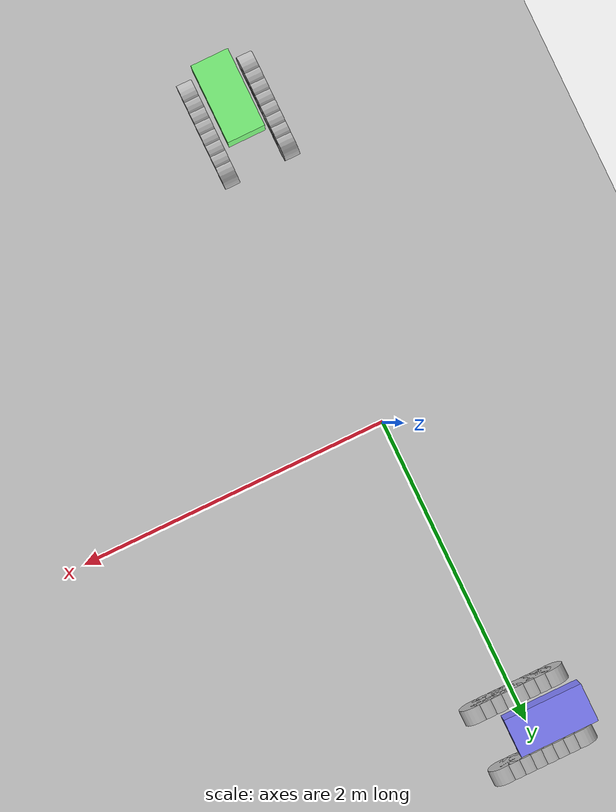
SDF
<?xml version="1.0" ?>
<sdf version="1.6">
  <world name="track_drive">

    <physics name="1ms" type="ignored">
      <max_step_size>0.001</max_step_size>
      <real_time_factor>1.0</real_time_factor>
    </physics>
    <plugin
      filename="gz-sim-physics-system"
      name="gz::sim::systems::Physics">
    </plugin>
    <plugin
      filename="gz-sim-user-commands-system"
      name="gz::sim::systems::UserCommands">
    </plugin>
    <plugin
      filename="gz-sim-scene-broadcaster-system"
      name="gz::sim::systems::SceneBroadcaster">
    </plugin>
    <plugin
      filename="gz-sim-imu-system"
      name="gz::sim::systems::Imu">
    </plugin>

    <light type="directional" name="sun">
      <cast_shadows>true</cast_shadows>
      <pose>0 0 10 0 0 0</pose>
      <diffuse>1 1 1 1</diffuse>
      <specular>0.5 0.5 0.5 1</specular>
      <attenuation>
        <range>1000</range>
        <constant>0.9</constant>
        <linear>0.01</linear>
        <quadratic>0.001</quadratic>
      </attenuation>
      <direction>-0.5 0.1 -0.9</direction>
    </light>

    <model name="ground_plane">
      <static>true</static>
      <link name="link">
        <collision name="collision">
          <geometry>
            <plane>
              <normal>0 0 1</normal>
              <size>100 100</size>
            </plane>
          </geometry>
        </collision>
        <visual name="visual">
          <geometry>
            <plane>
              <normal>0 0 1</normal>
              <size>100 100</size>
            </plane>
          </geometry>
          <material>
            <ambient>0.8 0.8 0.8 1</ambient>
            <diffuse>0.8 0.8 0.8 1</diffuse>
            <specular>0.8 0.8 0.8 1</specular>
          </material>
        </visual>
      </link>
    </model>

    <model name="vehicle_blue">
      <pose frame=''>0 2 0.071917 0 0 0</pose>
      <link name='base_link'>
          <pose frame=''>0 0 0 0 -0 0</pose>
          <inertial>
              <pose frame=''>-0.122 0 0.118 1.5707963267948966 -0 0</pose>
              <mass>13.14</mass>
              <inertia>
                  <ixx>0.10019</ixx>
                  <ixy>0</ixy>
                  <ixz>0</ixz>
                  <iyy>0.345043</iyy>
                  <iyz>0</iyz>
                  <izz>0.302044</izz>
              </inertia>
          </inertial>
          <collision name='base_link_collision'>
              <pose frame=''>-0.122 0 0.118 0 -0 0</pose>
              <geometry>
                  <box>
                      <size>0.50017 0.24093 0.139</size>
                  </box>
              </geometry>
          </collision>
          <visual name='base_link_visual'>
              <pose frame=''>-0.122 0 0.118 0 -0 0</pose>
              <geometry>
                  <box>
                      <size>0.50017 0.24093 0.139</size>
                  </box>
              </geometry>
              <material>
                <ambient>0.5 0.5 1.0 1</ambient>
                <diffuse>0.5 0.5 1.0 1</diffuse>
                <specular>0.0 0.0 1.0 1</specular>
              </material>
          </visual>
          <self_collide>0</self_collide>
          <gravity>1</gravity>
          <kinematic>0</kinematic>

          <sensor name="imu_sensor" type="imu">
            <always_on>1</always_on>
            <update_rate>1000</update_rate>
          </sensor>
      </link>

      <link name='left_track'>
          <pose frame=''>0 0.1985 0 0 -0 0</pose>
          <inertial>
              <mass>2.06</mass>
              <inertia>
                  <ixx>0.002731</ixx>
                  <ixy>0</ixy>
                  <ixz>0</ixz>
                  <iyy>0.032554</iyy>
                  <iyz>0</iyz>
                  <izz>0.031391</izz>
              </inertia>
          </inertial>
          <collision name='left_track_collision'>
              <pose frame=''>0 0 0.01855 1.5707963267948966  -0 1.5707963267948966</pose>
              <geometry>
                  <box>
                      <size>0.009728 0.018094 0.05</size>
                  </box>
              </geometry>
          </collision>
      </link>
      <joint name='left_track_j' type='fixed'>
          <child>left_track</child>
          <parent>base_link</parent>
      </joint>
      <link name='left_track_wheel1'>
          <pose frame=''>0.25 0.1985 0.01855 0 -0 0</pose>
          <inertial>
              <mass>0.5</mass>
              <inertia>
                  <ixx>0.001</ixx>
                  <ixy>0</ixy>
                  <ixz>0</ixz>
                  <iyy>0.001</iyy>
                  <iyz>0</iyz>
                  <izz>0.001</izz>
              </inertia>
          </inertial>
          <collision name='left_track_wheel1_collision'>
              <pose frame=''>0 0 0 1.5707963267948966 -0 0</pose>
              <geometry>
                  <cylinder>
                      <length>0.09728</length>
                      <radius>0.09047</radius>
                  </cylinder>
              </geometry>
              <surface>
                  <friction>
                      <ode>
                          <mu>0.5</mu>
                          <mu2>3.19858</mu2>
                          <fdir1>0 0 1</fdir1>
                          <slip1>0</slip1>
                          <slip2>0</slip2>
                      </ode>
                  </friction>
              </surface>
          </collision>
          <visual name='left_track_wheel1_visual'>
              <pose frame=''>0 0 0 1.5707963267948966 -0 0</pose>
              <geometry>
                  <cylinder>
                      <length>0.09728</length>
                      <radius>0.09047</radius>
                  </cylinder>
              </geometry>
          </visual>
      </link>
      <joint name='left_track_wheel1_j' type='revolute'>
          <child>left_track_wheel1</child>
          <parent>left_track</parent>
          <axis>
              <xyz>0 1 0</xyz>
              <limit>
                  <lower>-1e+16</lower>
                  <upper>1e+16</upper>
              </limit>
          </axis>
      </joint>
      <link name='left_track_wheel2'>
          <pose frame=''>0.1786 0.1985 0.01855 0 -0 0</pose>
          <inertial>
              <mass>0.5</mass>
              <inertia>
                  <ixx>0.001</ixx>
                  <ixy>0</ixy>
                  <ixz>0</ixz>
                  <iyy>0.001</iyy>
                  <iyz>0</iyz>
                  <izz>0.001</izz>
              </inertia>
          </inertial>
          <collision name='left_track_wheel2_collision'>
              <pose frame=''>0 0 0 1.5707963267948966 -0 0</pose>
              <geometry>
                  <cylinder>
                      <length>0.09728</length>
                      <radius>0.09047</radius>
                  </cylinder>
              </geometry>
              <surface>
                  <friction>
                      <ode>
                          <mu>0.5</mu>
                          <mu2>3.19858</mu2>
                          <fdir1>0 0 1</fdir1>
                          <slip1>0</slip1>
                          <slip2>0</slip2>
                      </ode>
                  </friction>
              </surface>
          </collision>
          <visual name='left_track_wheel2_visual'>
              <pose frame=''>0 0 0 1.5707963267948966 -0 0</pose>
              <geometry>
                  <cylinder>
                      <length>0.09728</length>
                      <radius>0.09047</radius>
                  </cylinder>
              </geometry>
          </visual>
      </link>
      <joint name='left_track_wheel2_j' type='revolute'>
          <child>left_track_wheel2</child>
          <parent>left_track</parent>
          <axis>
              <xyz>0 1 0</xyz>
              <limit>
                  <lower>-1e+16</lower>
                  <upper>1e+16</upper>
              </limit>
          </axis>
      </joint>
      <link name='left_track_wheel3'>
          <pose frame=''>0.1072 0.1985 0.01855 0 -0 0</pose>
          <inertial>
              <mass>0.5</mass>
              <inertia>
                  <ixx>0.001</ixx>
                  <ixy>0</ixy>
                  <ixz>0</ixz>
                  <iyy>0.001</iyy>
                  <iyz>0</iyz>
                  <izz>0.001</izz>
              </inertia>
          </inertial>
          <collision name='left_track_wheel3_collision'>
              <pose frame=''>0 0 0 1.5707963267948966 -0 0</pose>
              <geometry>
                  <cylinder>
                      <length>0.09728</length>
                      <radius>0.09047</radius>
                  </cylinder>
              </geometry>
              <surface>
                  <friction>
                      <ode>
                          <mu>0.5</mu>
                          <mu2>3.19858</mu2>
                          <fdir1>0 0 1</fdir1>
                          <slip1>0</slip1>
                          <slip2>0</slip2>
                      </ode>
                  </friction>
              </surface>
          </collision>
          <visual name='left_track_wheel3_visual'>
              <pose frame=''>0 0 0 1.5707963267948966 -0 0</pose>
              <geometry>
                  <cylinder>
                      <length>0.09728</length>
                      <radius>0.09047</radius>
                  </cylinder>
              </geometry>
          </visual>
      </link>
      <joint name='left_track_wheel3_j' type='revolute'>
          <child>left_track_wheel3</child>
          <parent>left_track</parent>
          <axis>
              <xyz>0 1 0</xyz>
              <limit>
                  <lower>-1e+16</lower>
                  <upper>1e+16</upper>
              </limit>
          </axis>
      </joint>
      <link name='left_track_wheel4'>
          <pose frame=''>-0.25 0.1985 0.01855 0 -0 0</pose>
          <inertial>
              <mass>0.5</mass>
              <inertia>
                  <ixx>0.001</ixx>
                  <ixy>0</ixy>
                  <ixz>0</ixz>
                  <iyy>0.001</iyy>
                  <iyz>0</iyz>
                  <izz>0.001</izz>
              </inertia>
          </inertial>
          <collision name='left_track_wheel4_collision'>
              <pose frame=''>0 0 0 1.5707963267948966 -0 0</pose>
              <geometry>
                  <cylinder>
                      <length>0.09728</length>
                      <radius>0.09047</radius>
                  </cylinder>
              </geometry>
              <surface>
                  <friction>
                      <ode>
                          <mu>0.5</mu>
                          <mu2>3.19858</mu2>
                          <fdir1>0 0 1</fdir1>
                          <slip1>0</slip1>
                          <slip2>0</slip2>
                      </ode>
                  </friction>
              </surface>
          </collision>
          <visual name='left_track_wheel4_visual'>
              <pose frame=''>0 0 0 1.5707963267948966 -0 0</pose>
              <geometry>
                  <cylinder>
                      <length>0.09728</length>
                      <radius>0.09047</radius>
                  </cylinder>
              </geometry>
          </visual>
      </link>
      <joint name='left_track_wheel4_j' type='revolute'>
          <child>left_track_wheel4</child>
          <parent>left_track</parent>
          <axis>
              <xyz>0 1 0</xyz>
              <limit>
                  <lower>-1e+16</lower>
                  <upper>1e+16</upper>
              </limit>
          </axis>
      </joint>
      <link name='left_track_wheel5'>
          <pose frame=''>-0.0358 0.1985 0.01855 0 -0 0</pose>
          <inertial>
              <mass>0.5</mass>
              <inertia>
                  <ixx>0.001</ixx>
                  <ixy>0</ixy>
                  <ixz>0</ixz>
                  <iyy>0.001</iyy>
                  <iyz>0</iyz>
                  <izz>0.001</izz>
              </inertia>
          </inertial>
          <collision name='left_track_wheel5_collision'>
              <pose frame=''>0 0 0 1.5707963267948966 -0 0</pose>
              <geometry>
                  <cylinder>
                      <length>0.09728</length>
                      <radius>0.09047</radius>
                  </cylinder>
              </geometry>
              <surface>
                  <friction>
                      <ode>
                          <mu>0.5</mu>
                          <mu2>3.19858</mu2>
                          <fdir1>0 0 1</fdir1>
                          <slip1>0</slip1>
                          <slip2>0</slip2>
                      </ode>
                  </friction>
              </surface>
          </collision>
          <visual name='left_track_wheel5_visual'>
              <pose frame=''>0 0 0 1.5707963267948966 -0 0</pose>
              <geometry>
                  <cylinder>
                      <length>0.09728</length>
                      <radius>0.09047</radius>
                  </cylinder>
              </geometry>
          </visual>
      </link>
      <joint name='left_track_wheel5_j' type='revolute'>
          <child>left_track_wheel5</child>
          <parent>left_track</parent>
          <axis>
              <xyz>0 1 0</xyz>
              <limit>
                  <lower>-1e+16</lower>
                  <upper>1e+16</upper>
              </limit>
          </axis>
      </joint>
      <link name='left_track_wheel6'>
          <pose frame=''>-0.1072 0.1985 0.01855 0 -0 0</pose>
          <inertial>
              <mass>0.5</mass>
              <inertia>
                  <ixx>0.001</ixx>
                  <ixy>0</ixy>
                  <ixz>0</ixz>
                  <iyy>0.001</iyy>
                  <iyz>0</iyz>
                  <izz>0.001</izz>
              </inertia>
          </inertial>
          <collision name='left_track_wheel6_collision'>
              <pose frame=''>0 0 0 1.5707963267948966 -0 0</pose>
              <geometry>
                  <cylinder>
                      <length>0.09728</length>
                      <radius>0.09047</radius>
                  </cylinder>
              </geometry>
              <surface>
                  <friction>
                      <ode>
                          <mu>0.5</mu>
                          <mu2>3.19858</mu2>
                          <fdir1>0 0 1</fdir1>
                          <slip1>0</slip1>
                          <slip2>0</slip2>
                      </ode>
                  </friction>
              </surface>
          </collision>
          <visual name='left_track_wheel6_visual'>
              <pose frame=''>0 0 0 1.5707963267948966 -0 0</pose>
              <geometry>
                  <cylinder>
                      <length>0.09728</length>
                      <radius>0.09047</radius>
                  </cylinder>
              </geometry>
          </visual>
          <gravity>1</gravity>
          <velocity_decay/>
          <kinematic>0</kinematic>
      </link>
      <joint name='left_track_wheel6_j' type='revolute'>
          <child>left_track_wheel6</child>
          <parent>left_track</parent>
          <axis>
              <xyz>0 1 0</xyz>
              <limit>
                  <lower>-1e+16</lower>
                  <upper>1e+16</upper>
              </limit>
          </axis>
      </joint>
      <link name='left_track_wheel7'>
          <pose frame=''>-0.1786 0.1985 0.01855 0 -0 0</pose>
          <inertial>
              <mass>0.5</mass>
              <inertia>
                  <ixx>0.001</ixx>
                  <ixy>0</ixy>
                  <ixz>0</ixz>
                  <iyy>0.001</iyy>
                  <iyz>0</iyz>
                  <izz>0.001</izz>
              </inertia>
          </inertial>
          <collision name='left_track_wheel7_collision'>
              <pose frame=''>0 0 0 1.5707963267948966 -0 0</pose>
              <geometry>
                  <cylinder>
                      <length>0.09728</length>
                      <radius>0.09047</radius>
                  </cylinder>
              </geometry>
              <surface>
                  <friction>
                      <ode>
                          <mu>0.5</mu>
                          <mu2>3.19858</mu2>
                          <fdir1>0 0 1</fdir1>
                          <slip1>0</slip1>
                          <slip2>0</slip2>
                      </ode>
                  </friction>
              </surface>
          </collision>
          <visual name='left_track_wheel7_visual'>
              <pose frame=''>0 0 0 1.5707963267948966 -0 0</pose>
              <geometry>
                  <cylinder>
                      <length>0.09728</length>
                      <radius>0.09047</radius>
                  </cylinder>
              </geometry>
          </visual>
      </link>
      <joint name='left_track_wheel7_j' type='revolute'>
          <child>left_track_wheel7</child>
          <parent>left_track</parent>
          <axis>
              <xyz>0 1 0</xyz>
              <limit>
                  <lower>-1e+16</lower>
                  <upper>1e+16</upper>
              </limit>
          </axis>
      </joint>
      <link name='left_track_wheel8'>
          <pose frame=''>0.0358 0.1985 0.01855 0 -0 0</pose>
          <inertial>
              <mass>0.5</mass>
              <inertia>
                  <ixx>0.001</ixx>
                  <ixy>0</ixy>
                  <ixz>0</ixz>
                  <iyy>0.001</iyy>
                  <iyz>0</iyz>
                  <izz>0.001</izz>
              </inertia>
          </inertial>
          <collision name='left_track_wheel8_collision'>
              <pose frame=''>0 0 0 1.5707963267948966 -0 0</pose>
              <geometry>
                  <cylinder>
                      <length>0.09728</length>
                      <radius>0.09047</radius>
                  </cylinder>
              </geometry>
              <surface>
                  <friction>
                      <ode>
                          <mu>0.5</mu>
                          <mu2>3.19858</mu2>
                          <fdir1>0 0 1</fdir1>
                          <slip1>0</slip1>
                          <slip2>0</slip2>
                      </ode>
                  </friction>
              </surface>
          </collision>
          <visual name='left_track_wheel8_visual'>
              <pose frame=''>0 0 0 1.5707963267948966 -0 0</pose>
              <geometry>
                  <cylinder>
                      <length>0.09728</length>
                      <radius>0.09047</radius>
                  </cylinder>
              </geometry>
          </visual>
      </link>
      <joint name='left_track_wheel8_j' type='revolute'>
          <child>left_track_wheel8</child>
          <parent>left_track</parent>
          <axis>
              <xyz>0 1 0</xyz>
              <limit>
                  <lower>-1e+16</lower>
                  <upper>1e+16</upper>
              </limit>
          </axis>
      </joint>

      <link name='right_track'>
          <pose frame=''>0 -0.1985 0 0 -0 0</pose>
          <inertial>
              <mass>2.06</mass>
              <inertia>
                  <ixx>0.002731</ixx>
                  <ixy>0</ixy>
                  <ixz>0</ixz>
                  <iyy>0.032554</iyy>
                  <iyz>0</iyz>
                  <izz>0.031391</izz>
              </inertia>
          </inertial>
          <collision name='right_track_collision'>
              <pose frame=''>0 0 0.01855 1.5707963267948966  -0 1.5707963267948966</pose>
              <geometry>
                  <box>
                      <size>0.009728 0.018094 0.05</size>
                  </box>
              </geometry>
          </collision>
      </link>
      <joint name='right_track_j' type='fixed'>
          <child>right_track</child>
          <parent>base_link</parent>
      </joint>

      <link name='right_track_wheel1'>
          <pose frame=''>0.25 -0.1985 0.01855 0 -0 0</pose>
          <inertial>
              <mass>0.5</mass>
              <inertia>
                  <ixx>0.001</ixx>
                  <ixy>0</ixy>
                  <ixz>0</ixz>
                  <iyy>0.001</iyy>
                  <iyz>0</iyz>
                  <izz>0.001</izz>
              </inertia>
          </inertial>
          <collision name='right_track_wheel1_collision'>
              <pose frame=''>0 0 0 1.5707963267948966 -0 0</pose>
              <geometry>
                  <cylinder>
                      <length>0.09728</length>
                      <radius>0.09047</radius>
                  </cylinder>
              </geometry>
              <surface>
                  <friction>
                      <ode>
                          <mu>0.5</mu>
                          <mu2>3.19858</mu2>
                          <fdir1>0 0 1</fdir1>
                          <slip1>0</slip1>
                          <slip2>0</slip2>
                      </ode>
                  </friction>
              </surface>
          </collision>
          <visual name='right_track_wheel1_visual'>
              <pose frame=''>0 0 0 1.5707963267948966 -0 0</pose>
              <geometry>
                  <cylinder>
                      <length>0.09728</length>
                      <radius>0.09047</radius>
                  </cylinder>
              </geometry>
          </visual>
      </link>
      <joint name='right_track_wheel1_j' type='revolute'>
          <child>right_track_wheel1</child>
          <parent>right_track</parent>
          <axis>
              <xyz>0 1 0</xyz>
              <limit>
                  <lower>-1e+16</lower>
                  <upper>1e+16</upper>
              </limit>
          </axis>
      </joint>
      <link name='right_track_wheel2'>
          <pose frame=''>0.1786 -0.1985 0.01855 0 -0 0</pose>
          <inertial>
              <mass>0.5</mass>
              <inertia>
                  <ixx>0.001</ixx>
                  <ixy>0</ixy>
                  <ixz>0</ixz>
                  <iyy>0.001</iyy>
                  <iyz>0</iyz>
                  <izz>0.001</izz>
              </inertia>
          </inertial>
          <collision name='right_track_wheel2_collision'>
              <pose frame=''>0 0 0 1.5707963267948966 -0 0</pose>
              <geometry>
                  <cylinder>
                      <length>0.09728</length>
                      <radius>0.09047</radius>
                  </cylinder>
              </geometry>
              <surface>
                  <friction>
                      <ode>
                          <mu>0.5</mu>
                          <mu2>3.19858</mu2>
                          <fdir1>0 0 1</fdir1>
                          <slip1>0</slip1>
                          <slip2>0</slip2>
                      </ode>
                  </friction>
              </surface>
          </collision>
          <visual name='right_track_wheel2_visual'>
              <pose frame=''>0 0 0 1.5707963267948966 -0 0</pose>
              <geometry>
                  <cylinder>
                      <length>0.09728</length>
                      <radius>0.09047</radius>
                  </cylinder>
              </geometry>
          </visual>
      </link>
      <joint name='right_track_wheel2_j' type='revolute'>
          <child>right_track_wheel2</child>
          <parent>right_track</parent>
          <axis>
              <xyz>0 1 0</xyz>
              <limit>
                  <lower>-1e+16</lower>
                  <upper>1e+16</upper>
              </limit>
          </axis>
      </joint>
      <link name='right_track_wheel3'>
          <pose frame=''>0.1072 -0.1985 0.01855 0 -0 0</pose>
          <inertial>
              <mass>0.5</mass>
              <inertia>
                  <ixx>0.001</ixx>
                  <ixy>0</ixy>
                  <ixz>0</ixz>
                  <iyy>0.001</iyy>
                  <iyz>0</iyz>
                  <izz>0.001</izz>
              </inertia>
          </inertial>
          <collision name='right_track_wheel3_collision'>
              <pose frame=''>0 0 0 1.5707963267948966 -0 0</pose>
              <geometry>
                  <cylinder>
                      <length>0.09728</length>
                      <radius>0.09047</radius>
                  </cylinder>
              </geometry>
              <surface>
                  <friction>
                      <ode>
                          <mu>0.5</mu>
                          <mu2>3.19858</mu2>
                          <fdir1>0 0 1</fdir1>
                          <slip1>0</slip1>
                          <slip2>0</slip2>
                      </ode>
                  </friction>
              </surface>
          </collision>
          <visual name='right_track_wheel3_visual'>
              <pose frame=''>0 0 0 1.5707963267948966 -0 0</pose>
              <geometry>
                  <cylinder>
                      <length>0.09728</length>
                      <radius>0.09047</radius>
                  </cylinder>
              </geometry>
          </visual>
      </link>
      <joint name='right_track_wheel3_j' type='revolute'>
          <child>right_track_wheel3</child>
          <parent>right_track</parent>
          <axis>
              <xyz>0 1 0</xyz>
              <limit>
                  <lower>-1e+16</lower>
                  <upper>1e+16</upper>
              </limit>
          </axis>
      </joint>
      <link name='right_track_wheel4'>
          <pose frame=''>-0.25 -0.1985 0.01855 0 -0 0</pose>
          <inertial>
              <mass>0.5</mass>
              <inertia>
                  <ixx>0.001</ixx>
                  <ixy>0</ixy>
                  <ixz>0</ixz>
                  <iyy>0.001</iyy>
                  <iyz>0</iyz>
                  <izz>0.001</izz>
              </inertia>
          </inertial>
          <collision name='right_track_wheel4_collision'>
              <pose frame=''>0 0 0 1.5707963267948966 -0 0</pose>
              <geometry>
                  <cylinder>
                      <length>0.09728</length>
                      <radius>0.09047</radius>
                  </cylinder>
              </geometry>
              <surface>
                  <friction>
                      <ode>
                          <mu>0.5</mu>
                          <mu2>3.19858</mu2>
                          <fdir1>0 0 1</fdir1>
                          <slip1>0</slip1>
                          <slip2>0</slip2>
                      </ode>
                  </friction>
              </surface>
          </collision>
          <visual name='right_track_wheel4_visual'>
              <pose frame=''>0 0 0 1.5707963267948966 -0 0</pose>
              <geometry>
                  <cylinder>
                      <length>0.09728</length>
                      <radius>0.09047</radius>
                  </cylinder>
              </geometry>
          </visual>
      </link>
      <joint name='right_track_wheel4_j' type='revolute'>
          <child>right_track_wheel4</child>
          <parent>right_track</parent>
          <axis>
              <xyz>0 1 0</xyz>
              <limit>
                  <lower>-1e+16</lower>
                  <upper>1e+16</upper>
              </limit>
          </axis>
      </joint>
      <link name='right_track_wheel5'>
          <pose frame=''>-0.0358 -0.1985 0.01855 0 -0 0</pose>
          <inertial>
              <mass>0.5</mass>
              <inertia>
                  <ixx>0.001</ixx>
                  <ixy>0</ixy>
                  <ixz>0</ixz>
                  <iyy>0.001</iyy>
                  <iyz>0</iyz>
                  <izz>0.001</izz>
              </inertia>
          </inertial>
          <collision name='right_track_wheel5_collision'>
              <pose frame=''>0 0 0 1.5707963267948966 -0 0</pose>
              <geometry>
                  <cylinder>
                      <length>0.09728</length>
                      <radius>0.09047</radius>
                  </cylinder>
              </geometry>
              <surface>
                  <friction>
                      <ode>
                          <mu>0.5</mu>
                          <mu2>3.19858</mu2>
                          <fdir1>0 0 1</fdir1>
                          <slip1>0</slip1>
                          <slip2>0</slip2>
                      </ode>
                  </friction>
              </surface>
          </collision>
          <visual name='right_track_wheel5_visual'>
              <pose frame=''>0 0 0 1.5707963267948966 -0 0</pose>
              <geometry>
                  <cylinder>
                      <length>0.09728</length>
                      <radius>0.09047</radius>
                  </cylinder>
              </geometry>
          </visual>
      </link>
      <joint name='right_track_wheel5_j' type='revolute'>
          <child>right_track_wheel5</child>
          <parent>right_track</parent>
          <axis>
              <xyz>0 1 0</xyz>
              <limit>
                  <lower>-1e+16</lower>
                  <upper>1e+16</upper>
              </limit>
          </axis>
      </joint>
      <link name='right_track_wheel6'>
          <pose frame=''>-0.1072 -0.1985 0.01855 0 -0 0</pose>
          <inertial>
              <mass>0.5</mass>
              <inertia>
                  <ixx>0.001</ixx>
                  <ixy>0</ixy>
                  <ixz>0</ixz>
                  <iyy>0.001</iyy>
                  <iyz>0</iyz>
                  <izz>0.001</izz>
              </inertia>
          </inertial>
          <collision name='right_track_wheel6_collision'>
              <pose frame=''>0 0 0 1.5707963267948966 -0 0</pose>
              <geometry>
                  <cylinder>
                      <length>0.09728</length>
                      <radius>0.09047</radius>
                  </cylinder>
              </geometry>
              <surface>
                  <friction>
                      <ode>
                          <mu>0.5</mu>
                          <mu2>3.19858</mu2>
                          <fdir1>0 0 1</fdir1>
                          <slip1>0</slip1>
                          <slip2>0</slip2>
                      </ode>
                  </friction>
              </surface>
          </collision>
          <visual name='right_track_wheel6_visual'>
              <pose frame=''>0 0 0 1.5707963267948966 -0 0</pose>
              <geometry>
                  <cylinder>
                      <length>0.09728</length>
                      <radius>0.09047</radius>
                  </cylinder>
              </geometry>
          </visual>
      </link>
      <joint name='right_track_wheel6_j' type='revolute'>
          <child>right_track_wheel6</child>
          <parent>right_track</parent>
          <axis>
              <xyz>0 1 0</xyz>
              <limit>
                  <lower>-1e+16</lower>
                  <upper>1e+16</upper>
              </limit>
          </axis>
      </joint>
      <link name='right_track_wheel7'>
          <pose frame=''>-0.1786 -0.1985 0.01855 0 -0 0</pose>
          <inertial>
              <mass>0.5</mass>
              <inertia>
                  <ixx>0.001</ixx>
                  <ixy>0</ixy>
                  <ixz>0</ixz>
                  <iyy>0.001</iyy>
                  <iyz>0</iyz>
                  <izz>0.001</izz>
              </inertia>
          </inertial>
          <collision name='right_track_wheel7_collision'>
              <pose frame=''>0 0 0 1.5707963267948966 -0 0</pose>
              <geometry>
                  <cylinder>
                      <length>0.09728</length>
                      <radius>0.09047</radius>
                  </cylinder>
              </geometry>
              <surface>
                  <friction>
                      <ode>
                          <mu>0.5</mu>
                          <mu2>3.19858</mu2>
                          <fdir1>0 0 1</fdir1>
                          <slip1>0</slip1>
                          <slip2>0</slip2>
                      </ode>
                  </friction>
              </surface>
          </collision>
          <visual name='right_track_wheel7_visual'>
              <pose frame=''>0 0 0 1.5707963267948966 -0 0</pose>
              <geometry>
                  <cylinder>
                      <length>0.09728</length>
                      <radius>0.09047</radius>
                  </cylinder>
              </geometry>
          </visual>
      </link>
      <joint name='right_track_wheel7_j' type='revolute'>
          <child>right_track_wheel7</child>
          <parent>right_track</parent>
          <axis>
              <xyz>0 1 0</xyz>
              <limit>
                  <lower>-1e+16</lower>
                  <upper>1e+16</upper>
              </limit>
          </axis>
      </joint>
      <link name='right_track_wheel8'>
          <pose frame=''>0.0358 -0.1985 0.01855 0 -0 0</pose>
          <inertial>
              <mass>0.5</mass>
              <inertia>
                  <ixx>0.001</ixx>
                  <ixy>0</ixy>
                  <ixz>0</ixz>
                  <iyy>0.001</iyy>
                  <iyz>0</iyz>
                  <izz>0.001</izz>
              </inertia>
          </inertial>
          <collision name='right_track_wheel8_collision'>
              <pose frame=''>0 0 0 1.5707963267948966 -0 0</pose>
              <geometry>
                  <cylinder>
                      <length>0.09728</length>
                      <radius>0.09047</radius>
                  </cylinder>
              </geometry>
              <surface>
                  <friction>
                      <ode>
                          <mu>0.5</mu>
                          <mu2>3.19858</mu2>
                          <fdir1>0 0 1</fdir1>
                          <slip1>0</slip1>
                          <slip2>0</slip2>
                      </ode>
                  </friction>
              </surface>
          </collision>
          <visual name='right_track_wheel8_visual'>
              <pose frame=''>0 0 0 1.5707963267948966 -0 0</pose>
              <geometry>
                  <cylinder>
                      <length>0.09728</length>
                      <radius>0.09047</radius>
                  </cylinder>
              </geometry>
          </visual>
      </link>
      <joint name='right_track_wheel8_j' type='revolute'>
          <child>right_track_wheel8</child>
          <parent>right_track</parent>
          <axis>
              <xyz>0 1 0</xyz>
              <limit>
                  <lower>-1e+16</lower>
                  <upper>1e+16</upper>
              </limit>
          </axis>
      </joint>

      <!-- Track drive -->
      <plugin filename="gz-sim-diff-drive-system"
              name="gz::sim::systems::DiffDrive">
        <left_joint>left_track_wheel1_j</left_joint>
        <right_joint>right_track_wheel1_j</right_joint>
        <left_joint>left_track_wheel2_j</left_joint>
        <right_joint>right_track_wheel2_j</right_joint>
        <left_joint>left_track_wheel3_j</left_joint>
        <right_joint>right_track_wheel3_j</right_joint>
        <left_joint>left_track_wheel4_j</left_joint>
        <right_joint>right_track_wheel4_j</right_joint>
        <left_joint>left_track_wheel5_j</left_joint>
        <right_joint>right_track_wheel5_j</right_joint>
        <left_joint>left_track_wheel6_j</left_joint>
        <right_joint>right_track_wheel6_j</right_joint>
        <left_joint>left_track_wheel7_j</left_joint>
        <right_joint>right_track_wheel7_j</right_joint>
        <left_joint>left_track_wheel8_j</left_joint>
        <right_joint>right_track_wheel8_j</right_joint>
        <wheel_separation>0.493</wheel_separation>
        <wheel_radius>0.09047</wheel_radius>
      </plugin>

    </model>

    <model name="vehicle_green">
      <pose frame=''>0 -2 0.071917 0 0 1.5707963267948966</pose>
      <link name='base_link'>
          <pose frame=''>0 0 0 0 -0 0</pose>
          <inertial>
              <pose frame=''>-0.122 0 0.118 1.5707963267948966  -0 0</pose>
              <mass>13.14</mass>
              <inertia>
                  <ixx>0.10019</ixx>
                  <ixy>0</ixy>
                  <ixz>0</ixz>
                  <iyy>0.345043</iyy>
                  <iyz>0</iyz>
                  <izz>0.302044</izz>
              </inertia>
          </inertial>
          <collision name='base_link_collision'>
              <pose frame=''>-0.122 0 0.118 0 -0 0</pose>
              <geometry>
                  <box>
                      <size>0.50017 0.24093 0.139</size>
                  </box>
              </geometry>
          </collision>
          <visual name='base_link_visual'>
              <pose frame=''>-0.122 0 0.118 0 -0 0</pose>
              <geometry>
                  <box>
                      <size>0.50017 0.24093 0.139</size>
                  </box>
              </geometry>
              <material>
                <ambient>0.5 1.0 0.5 1</ambient>
                <diffuse>0.5 1.0 0.5 1</diffuse>
                <specular>0.0 1.0 0.0 1</specular>
              </material>
          </visual>
          <self_collide>0</self_collide>
          <gravity>1</gravity>
          <kinematic>0</kinematic>
          <sensor name="imu_sensor" type="imu">
            <always_on>1</always_on>
            <update_rate>1000</update_rate>
          </sensor>
      </link>

      <link name='left_track'>
          <pose frame=''>0 0.1985 0 0 -0 0</pose>
          <inertial>
              <mass>2.06</mass>
              <inertia>
                  <ixx>0.002731</ixx>
                  <ixy>0</ixy>
                  <ixz>0</ixz>
                  <iyy>0.032554</iyy>
                  <iyz>0</iyz>
                  <izz>0.031391</izz>
              </inertia>
          </inertial>
          <collision name='left_track_collision'>
              <pose frame=''>0 0 0.01855 1.5707963267948966 -0 1.5707963267948966</pose>
              <geometry>
                  <box>
                      <size>0.009728 0.018094 0.05</size>
                  </box>
              </geometry>
              <surface>
                  <friction>
                      <ode>
                          <mu>0.5</mu>
                          <mu2>3.19858</mu2>
                          <fdir1>0 0 1</fdir1>
                          <slip1>0</slip1>
                          <slip2>0</slip2>
                      </ode>
                  </friction>
                  <contact>
                      <collide_bitmask>0</collide_bitmask>
                  </contact>
              </surface>
          </collision>
      </link>
      <joint name='left_track_j' type='fixed'>
          <child>left_track</child>
          <parent>base_link</parent>
      </joint>
      <link name='left_track_wheel1'>
          <pose frame=''>0.25 0.1985 0.01855 0 -0 0</pose>
          <inertial>
              <mass>0.5</mass>
              <inertia>
                  <ixx>0.001</ixx>
                  <ixy>0</ixy>
                  <ixz>0</ixz>
                  <iyy>0.001</iyy>
                  <iyz>0</iyz>
                  <izz>0.001</izz>
              </inertia>
          </inertial>
          <collision name='left_track_wheel1_collision'>
              <pose frame=''>0 0 0 1.5707963267948966 -0 0</pose>
              <geometry>
                  <cylinder>
                      <length>0.09728</length>
                      <radius>0.09047</radius>
                  </cylinder>
              </geometry>
              <surface>
                  <friction>
                      <ode>
                          <mu>0.5</mu>
                          <mu2>3.19858</mu2>
                          <fdir1>0 0 1</fdir1>
                          <slip1>0</slip1>
                          <slip2>0</slip2>
                      </ode>
                  </friction>
              </surface>
          </collision>
          <visual name='left_track_wheel1_visual'>
              <pose frame=''>0 0 0 1.5707963267948966 -0 0</pose>
              <geometry>
                  <cylinder>
                      <length>0.09728</length>
                      <radius>0.09047</radius>
                  </cylinder>
              </geometry>
          </visual>
      </link>
      <joint name='left_track_wheel1_j' type='revolute'>
          <child>left_track_wheel1</child>
          <parent>left_track</parent>
          <axis>
              <xyz>0 1 0</xyz>
              <limit>
                  <lower>-1e+16</lower>
                  <upper>1e+16</upper>
              </limit>
          </axis>
      </joint>
      <link name='left_track_wheel2'>
          <pose frame=''>0.1786 0.1985 0.01855 0 -0 0</pose>
          <inertial>
              <mass>0.5</mass>
              <inertia>
                  <ixx>0.001</ixx>
                  <ixy>0</ixy>
                  <ixz>0</ixz>
                  <iyy>0.001</iyy>
                  <iyz>0</iyz>
                  <izz>0.001</izz>
              </inertia>
          </inertial>
          <collision name='left_track_wheel2_collision'>
              <pose frame=''>0 0 0 1.5707963267948966 -0 0</pose>
              <geometry>
                  <cylinder>
                      <length>0.09728</length>
                      <radius>0.09047</radius>
                  </cylinder>
              </geometry>
              <surface>
                  <friction>
                      <ode>
                          <mu>0.5</mu>
                          <mu2>3.19858</mu2>
                          <fdir1>0 0 1</fdir1>
                          <slip1>0</slip1>
                          <slip2>0</slip2>
                      </ode>
                  </friction>
              </surface>
          </collision>
          <visual name='left_track_wheel2_visual'>
              <pose frame=''>0 0 0 1.5707963267948966 -0 0</pose>
              <geometry>
                  <cylinder>
                      <length>0.09728</length>
                      <radius>0.09047</radius>
                  </cylinder>
              </geometry>
          </visual>
      </link>
      <joint name='left_track_wheel2_j' type='revolute'>
          <child>left_track_wheel2</child>
          <parent>left_track</parent>
          <axis>
              <xyz>0 1 0</xyz>
              <limit>
                  <lower>-1e+16</lower>
                  <upper>1e+16</upper>
              </limit>
          </axis>
      </joint>
      <link name='left_track_wheel3'>
          <pose frame=''>0.1072 0.1985 0.01855 0 -0 0</pose>
          <inertial>
              <mass>0.5</mass>
              <inertia>
                  <ixx>0.001</ixx>
                  <ixy>0</ixy>
                  <ixz>0</ixz>
                  <iyy>0.001</iyy>
                  <iyz>0</iyz>
                  <izz>0.001</izz>
              </inertia>
          </inertial>
          <collision name='left_track_wheel3_collision'>
              <pose frame=''>0 0 0 1.5707963267948966 -0 0</pose>
              <geometry>
                  <cylinder>
                      <length>0.09728</length>
                      <radius>0.09047</radius>
                  </cylinder>
              </geometry>
              <surface>
                  <friction>
                      <ode>
                          <mu>0.5</mu>
                          <mu2>3.19858</mu2>
                          <fdir1>0 0 1</fdir1>
                          <slip1>0</slip1>
                          <slip2>0</slip2>
                      </ode>
                  </friction>
              </surface>
          </collision>
          <visual name='left_track_wheel3_visual'>
              <pose frame=''>0 0 0 1.5707963267948966 -0 0</pose>
              <geometry>
                  <cylinder>
                      <length>0.09728</length>
                      <radius>0.09047</radius>
                  </cylinder>
              </geometry>
          </visual>
      </link>
      <joint name='left_track_wheel3_j' type='revolute'>
          <child>left_track_wheel3</child>
          <parent>left_track</parent>
          <axis>
              <xyz>0 1 0</xyz>
              <limit>
                  <lower>-1e+16</lower>
                  <upper>1e+16</upper>
              </limit>
          </axis>
      </joint>
      <link name='left_track_wheel4'>
          <pose frame=''>-0.25 0.1985 0.01855 0 -0 0</pose>
          <inertial>
              <mass>0.5</mass>
              <inertia>
                  <ixx>0.001</ixx>
                  <ixy>0</ixy>
                  <ixz>0</ixz>
                  <iyy>0.001</iyy>
                  <iyz>0</iyz>
                  <izz>0.001</izz>
              </inertia>
          </inertial>
          <collision name='left_track_wheel4_collision'>
              <pose frame=''>0 0 0 1.5707963267948966 -0 0</pose>
              <geometry>
                  <cylinder>
                      <length>0.09728</length>
                      <radius>0.09047</radius>
                  </cylinder>
              </geometry>
              <surface>
                  <friction>
                      <ode>
                          <mu>0.5</mu>
                          <mu2>3.19858</mu2>
                          <fdir1>0 0 1</fdir1>
                          <slip1>0</slip1>
                          <slip2>0</slip2>
                      </ode>
                  </friction>
              </surface>
          </collision>
          <visual name='left_track_wheel4_visual'>
              <pose frame=''>0 0 0 1.5707963267948966 -0 0</pose>
              <geometry>
                  <cylinder>
                      <length>0.09728</length>
                      <radius>0.09047</radius>
                  </cylinder>
              </geometry>
          </visual>
      </link>
      <joint name='left_track_wheel4_j' type='revolute'>
          <child>left_track_wheel4</child>
          <parent>left_track</parent>
          <axis>
              <xyz>0 1 0</xyz>
              <limit>
                  <lower>-1e+16</lower>
                  <upper>1e+16</upper>
              </limit>
          </axis>
      </joint>
      <link name='left_track_wheel5'>
          <pose frame=''>-0.0358 0.1985 0.01855 0 -0 0</pose>
          <inertial>
              <mass>0.5</mass>
              <inertia>
                  <ixx>0.001</ixx>
                  <ixy>0</ixy>
                  <ixz>0</ixz>
                  <iyy>0.001</iyy>
                  <iyz>0</iyz>
                  <izz>0.001</izz>
              </inertia>
          </inertial>
          <collision name='left_track_wheel5_collision'>
              <pose frame=''>0 0 0 1.5707963267948966 -0 0</pose>
              <geometry>
                  <cylinder>
                      <length>0.09728</length>
                      <radius>0.09047</radius>
                  </cylinder>
              </geometry>
              <surface>
                  <friction>
                      <ode>
                          <mu>0.5</mu>
                          <mu2>3.19858</mu2>
                          <fdir1>0 0 1</fdir1>
                          <slip1>0</slip1>
                          <slip2>0</slip2>
                      </ode>
                  </friction>
              </surface>
          </collision>
          <visual name='left_track_wheel5_visual'>
              <pose frame=''>0 0 0 1.5707963267948966 -0 0</pose>
              <geometry>
                  <cylinder>
                      <length>0.09728</length>
                      <radius>0.09047</radius>
                  </cylinder>
              </geometry>
          </visual>
      </link>
      <joint name='left_track_wheel5_j' type='revolute'>
          <child>left_track_wheel5</child>
          <parent>left_track</parent>
          <axis>
              <xyz>0 1 0</xyz>
              <limit>
                  <lower>-1e+16</lower>
                  <upper>1e+16</upper>
              </limit>
          </axis>
      </joint>
      <link name='left_track_wheel6'>
          <pose frame=''>-0.1072 0.1985 0.01855 0 -0 0</pose>
          <inertial>
              <mass>0.5</mass>
              <inertia>
                  <ixx>0.001</ixx>
                  <ixy>0</ixy>
                  <ixz>0</ixz>
                  <iyy>0.001</iyy>
                  <iyz>0</iyz>
                  <izz>0.001</izz>
              </inertia>
          </inertial>
          <collision name='left_track_wheel6_collision'>
              <pose frame=''>0 0 0 1.5707963267948966 -0 0</pose>
              <geometry>
                  <cylinder>
                      <length>0.09728</length>
                      <radius>0.09047</radius>
                  </cylinder>
              </geometry>
              <surface>
                  <friction>
                      <ode>
                          <mu>0.5</mu>
                          <mu2>3.19858</mu2>
                          <fdir1>0 0 1</fdir1>
                          <slip1>0</slip1>
                          <slip2>0</slip2>
                      </ode>
                  </friction>
              </surface>
          </collision>
          <visual name='left_track_wheel6_visual'>
              <pose frame=''>0 0 0 1.5707963267948966 -0 0</pose>
              <geometry>
                  <cylinder>
                      <length>0.09728</length>
                      <radius>0.09047</radius>
                  </cylinder>
              </geometry>
          </visual>
          <gravity>1</gravity>
          <velocity_decay/>
          <kinematic>0</kinematic>
      </link>
      <joint name='left_track_wheel6_j' type='revolute'>
          <child>left_track_wheel6</child>
          <parent>left_track</parent>
          <axis>
              <xyz>0 1 0</xyz>
              <limit>
                  <lower>-1e+16</lower>
                  <upper>1e+16</upper>
              </limit>
          </axis>
      </joint>
      <link name='left_track_wheel7'>
          <pose frame=''>-0.1786 0.1985 0.01855 0 -0 0</pose>
          <inertial>
              <mass>0.5</mass>
              <inertia>
                  <ixx>0.001</ixx>
                  <ixy>0</ixy>
                  <ixz>0</ixz>
                  <iyy>0.001</iyy>
                  <iyz>0</iyz>
                  <izz>0.001</izz>
              </inertia>
          </inertial>
          <collision name='left_track_wheel7_collision'>
              <pose frame=''>0 0 0 1.5707963267948966 -0 0</pose>
              <geometry>
                  <cylinder>
                      <length>0.09728</length>
                      <radius>0.09047</radius>
                  </cylinder>
              </geometry>
              <surface>
                  <friction>
                      <ode>
                          <mu>0.5</mu>
                          <mu2>3.19858</mu2>
                          <fdir1>0 0 1</fdir1>
                          <slip1>0</slip1>
                          <slip2>0</slip2>
                      </ode>
                  </friction>
              </surface>
          </collision>
          <visual name='left_track_wheel7_visual'>
              <pose frame=''>0 0 0 1.5707963267948966 -0 0</pose>
              <geometry>
                  <cylinder>
                      <length>0.09728</length>
                      <radius>0.09047</radius>
                  </cylinder>
              </geometry>
          </visual>
      </link>
      <joint name='left_track_wheel7_j' type='revolute'>
          <child>left_track_wheel7</child>
          <parent>left_track</parent>
          <axis>
              <xyz>0 1 0</xyz>
              <limit>
                  <lower>-1e+16</lower>
                  <upper>1e+16</upper>
              </limit>
          </axis>
      </joint>
      <link name='left_track_wheel8'>
          <pose frame=''>0.0358 0.1985 0.01855 0 -0 0</pose>
          <inertial>
              <mass>0.5</mass>
              <inertia>
                  <ixx>0.001</ixx>
                  <ixy>0</ixy>
                  <ixz>0</ixz>
                  <iyy>0.001</iyy>
                  <iyz>0</iyz>
                  <izz>0.001</izz>
              </inertia>
          </inertial>
          <collision name='left_track_wheel8_collision'>
              <pose frame=''>0 0 0 1.5707963267948966 -0 0</pose>
              <geometry>
                  <cylinder>
                      <length>0.09728</length>
                      <radius>0.09047</radius>
                  </cylinder>
              </geometry>
              <surface>
                  <friction>
                      <ode>
                          <mu>0.5</mu>
                          <mu2>3.19858</mu2>
                          <fdir1>0 0 1</fdir1>
                          <slip1>0</slip1>
                          <slip2>0</slip2>
                      </ode>
                  </friction>
              </surface>
          </collision>
          <visual name='left_track_wheel8_visual'>
              <pose frame=''>0 0 0 1.5707963267948966 -0 0</pose>
              <geometry>
                  <cylinder>
                      <length>0.09728</length>
                      <radius>0.09047</radius>
                  </cylinder>
              </geometry>
          </visual>
      </link>
      <joint name='left_track_wheel8_j' type='revolute'>
          <child>left_track_wheel8</child>
          <parent>left_track</parent>
          <axis>
              <xyz>0 1 0</xyz>
              <limit>
                  <lower>-1e+16</lower>
                  <upper>1e+16</upper>
              </limit>
          </axis>
      </joint>

      <link name='right_track'>
          <pose frame=''>0 -0.1985 0 0 -0 0</pose>
          <inertial>
              <mass>2.06</mass>
              <inertia>
                  <ixx>0.002731</ixx>
                  <ixy>0</ixy>
                  <ixz>0</ixz>
                  <iyy>0.032554</iyy>
                  <iyz>0</iyz>
                  <izz>0.031391</izz>
              </inertia>
          </inertial>
          <collision name='right_track_collision'>
              <pose frame=''>0 0 0.01855 1.5707963267948966 -0 1.5707963267948966</pose>
              <geometry>
                  <box>
                      <size>0.009728 0.018094 0.05</size>
                  </box>
              </geometry>
              <surface>
                  <friction>
                      <ode>
                          <mu>0.5</mu>
                          <mu2>3.19858</mu2>
                          <fdir1>0 0 1</fdir1>
                          <slip1>0</slip1>
                          <slip2>0</slip2>
                      </ode>
                  </friction>
                  <contact>
                      <collide_bitmask>0</collide_bitmask>
                  </contact>
              </surface>
          </collision>
      </link>
      <joint name='right_track_j' type='fixed'>
          <child>right_track</child>
          <parent>base_link</parent>
      </joint>

      <link name='right_track_wheel1'>
          <pose frame=''>0.25 -0.1985 0.01855 0 -0 0</pose>
          <inertial>
              <mass>0.5</mass>
              <inertia>
                  <ixx>0.001</ixx>
                  <ixy>0</ixy>
                  <ixz>0</ixz>
                  <iyy>0.001</iyy>
                  <iyz>0</iyz>
                  <izz>0.001</izz>
              </inertia>
          </inertial>
          <collision name='right_track_wheel1_collision'>
              <pose frame=''>0 0 0 1.5707963267948966 -0 0</pose>
              <geometry>
                  <cylinder>
                      <length>0.09728</length>
                      <radius>0.09047</radius>
                  </cylinder>
              </geometry>
              <surface>
                  <friction>
                      <ode>
                          <mu>0.5</mu>
                          <mu2>3.19858</mu2>
                          <fdir1>0 0 1</fdir1>
                          <slip1>0</slip1>
                          <slip2>0</slip2>
                      </ode>
                  </friction>
              </surface>
          </collision>
          <visual name='right_track_wheel1_visual'>
              <pose frame=''>0 0 0 1.5707963267948966 -0 0</pose>
              <geometry>
                  <cylinder>
                      <length>0.09728</length>
                      <radius>0.09047</radius>
                  </cylinder>
              </geometry>
          </visual>
      </link>
      <joint name='right_track_wheel1_j' type='revolute'>
          <child>right_track_wheel1</child>
          <parent>right_track</parent>
          <axis>
              <xyz>0 1 0</xyz>
              <limit>
                  <lower>-1e+16</lower>
                  <upper>1e+16</upper>
              </limit>
          </axis>
      </joint>
      <link name='right_track_wheel2'>
          <pose frame=''>0.1786 -0.1985 0.01855 0 -0 0</pose>
          <inertial>
              <mass>0.5</mass>
              <inertia>
                  <ixx>0.001</ixx>
                  <ixy>0</ixy>
                  <ixz>0</ixz>
                  <iyy>0.001</iyy>
                  <iyz>0</iyz>
                  <izz>0.001</izz>
              </inertia>
          </inertial>
          <collision name='right_track_wheel2_collision'>
              <pose frame=''>0 0 0 1.5707963267948966 -0 0</pose>
              <geometry>
                  <cylinder>
                      <length>0.09728</length>
                      <radius>0.09047</radius>
                  </cylinder>
              </geometry>
              <surface>
                  <friction>
                      <ode>
                          <mu>0.5</mu>
                          <mu2>3.19858</mu2>
                          <fdir1>0 0 1</fdir1>
                          <slip1>0</slip1>
                          <slip2>0</slip2>
                      </ode>
                  </friction>
              </surface>
          </collision>
          <visual name='right_track_wheel2_visual'>
              <pose frame=''>0 0 0 1.5707963267948966 -0 0</pose>
              <geometry>
                  <cylinder>
                      <length>0.09728</length>
                      <radius>0.09047</radius>
                  </cylinder>
              </geometry>
          </visual>
      </link>
      <joint name='right_track_wheel2_j' type='revolute'>
          <child>right_track_wheel2</child>
          <parent>right_track</parent>
          <axis>
              <xyz>0 1 0</xyz>
              <limit>
                  <lower>-1e+16</lower>
                  <upper>1e+16</upper>
              </limit>
          </axis>
      </joint>
      <link name='right_track_wheel3'>
          <pose frame=''>0.1072 -0.1985 0.01855 0 -0 0</pose>
          <inertial>
              <mass>0.5</mass>
              <inertia>
                  <ixx>0.001</ixx>
                  <ixy>0</ixy>
                  <ixz>0</ixz>
                  <iyy>0.001</iyy>
                  <iyz>0</iyz>
                  <izz>0.001</izz>
              </inertia>
          </inertial>
          <collision name='right_track_wheel3_collision'>
              <pose frame=''>0 0 0 1.5707963267948966 -0 0</pose>
              <geometry>
                  <cylinder>
                      <length>0.09728</length>
                      <radius>0.09047</radius>
                  </cylinder>
              </geometry>
              <surface>
                  <friction>
                      <ode>
                          <mu>0.5</mu>
                          <mu2>3.19858</mu2>
                          <fdir1>0 0 1</fdir1>
                          <slip1>0</slip1>
                          <slip2>0</slip2>
                      </ode>
                  </friction>
              </surface>
          </collision>
          <visual name='right_track_wheel3_visual'>
              <pose frame=''>0 0 0 1.5707963267948966 -0 0</pose>
              <geometry>
                  <cylinder>
                      <length>0.09728</length>
                      <radius>0.09047</radius>
                  </cylinder>
              </geometry>
          </visual>
      </link>
      <joint name='right_track_wheel3_j' type='revolute'>
          <child>right_track_wheel3</child>
          <parent>right_track</parent>
          <axis>
              <xyz>0 1 0</xyz>
              <limit>
                  <lower>-1e+16</lower>
                  <upper>1e+16</upper>
              </limit>
          </axis>
      </joint>
      <link name='right_track_wheel4'>
          <pose frame=''>-0.25 -0.1985 0.01855 0 -0 0</pose>
          <inertial>
              <mass>0.5</mass>
              <inertia>
                  <ixx>0.001</ixx>
                  <ixy>0</ixy>
                  <ixz>0</ixz>
                  <iyy>0.001</iyy>
                  <iyz>0</iyz>
                  <izz>0.001</izz>
              </inertia>
          </inertial>
          <collision name='right_track_wheel4_collision'>
              <pose frame=''>0 0 0 1.5707963267948966 -0 0</pose>
              <geometry>
                  <cylinder>
                      <length>0.09728</length>
                      <radius>0.09047</radius>
                  </cylinder>
              </geometry>
              <surface>
                  <friction>
                      <ode>
                          <mu>0.5</mu>
                          <mu2>3.19858</mu2>
                          <fdir1>0 0 1</fdir1>
                          <slip1>0</slip1>
                          <slip2>0</slip2>
                      </ode>
                  </friction>
              </surface>
          </collision>
          <visual name='right_track_wheel4_visual'>
              <pose frame=''>0 0 0 1.5707963267948966 -0 0</pose>
              <geometry>
                  <cylinder>
                      <length>0.09728</length>
                      <radius>0.09047</radius>
                  </cylinder>
              </geometry>
          </visual>
      </link>
      <joint name='right_track_wheel4_j' type='revolute'>
          <child>right_track_wheel4</child>
          <parent>right_track</parent>
          <axis>
              <xyz>0 1 0</xyz>
              <limit>
                  <lower>-1e+16</lower>
                  <upper>1e+16</upper>
              </limit>
          </axis>
      </joint>
      <link name='right_track_wheel5'>
          <pose frame=''>-0.0358 -0.1985 0.01855 0 -0 0</pose>
          <inertial>
              <mass>0.5</mass>
              <inertia>
                  <ixx>0.001</ixx>
                  <ixy>0</ixy>
                  <ixz>0</ixz>
                  <iyy>0.001</iyy>
                  <iyz>0</iyz>
                  <izz>0.001</izz>
              </inertia>
          </inertial>
          <collision name='right_track_wheel5_collision'>
              <pose frame=''>0 0 0 1.5707963267948966 -0 0</pose>
              <geometry>
                  <cylinder>
                      <length>0.09728</length>
                      <radius>0.09047</radius>
                  </cylinder>
              </geometry>
              <surface>
                  <friction>
                      <ode>
                          <mu>0.5</mu>
                          <mu2>3.19858</mu2>
                          <fdir1>0 0 1</fdir1>
                          <slip1>0</slip1>
                          <slip2>0</slip2>
                      </ode>
                  </friction>
              </surface>
          </collision>
          <visual name='right_track_wheel5_visual'>
              <pose frame=''>0 0 0 1.5707963267948966 -0 0</pose>
              <geometry>
                  <cylinder>
                      <length>0.09728</length>
                      <radius>0.09047</radius>
                  </cylinder>
              </geometry>
          </visual>
      </link>
      <joint name='right_track_wheel5_j' type='revolute'>
          <child>right_track_wheel5</child>
          <parent>right_track</parent>
          <axis>
              <xyz>0 1 0</xyz>
              <limit>
                  <lower>-1e+16</lower>
                  <upper>1e+16</upper>
              </limit>
          </axis>
      </joint>
      <link name='right_track_wheel6'>
          <pose frame=''>-0.1072 -0.1985 0.01855 0 -0 0</pose>
          <inertial>
              <mass>0.5</mass>
              <inertia>
                  <ixx>0.001</ixx>
                  <ixy>0</ixy>
                  <ixz>0</ixz>
                  <iyy>0.001</iyy>
                  <iyz>0</iyz>
                  <izz>0.001</izz>
              </inertia>
          </inertial>
          <collision name='right_track_wheel6_collision'>
              <pose frame=''>0 0 0 1.5707963267948966 -0 0</pose>
              <geometry>
                  <cylinder>
                      <length>0.09728</length>
                      <radius>0.09047</radius>
                  </cylinder>
              </geometry>
              <surface>
                  <friction>
                      <ode>
                          <mu>0.5</mu>
                          <mu2>3.19858</mu2>
                          <fdir1>0 0 1</fdir1>
                          <slip1>0</slip1>
                          <slip2>0</slip2>
                      </ode>
                  </friction>
              </surface>
          </collision>
          <visual name='right_track_wheel6_visual'>
              <pose frame=''>0 0 0 1.5707963267948966 -0 0</pose>
              <geometry>
                  <cylinder>
                      <length>0.09728</length>
                      <radius>0.09047</radius>
                  </cylinder>
              </geometry>
          </visual>
      </link>
      <joint name='right_track_wheel6_j' type='revolute'>
          <child>right_track_wheel6</child>
          <parent>right_track</parent>
          <axis>
              <xyz>0 1 0</xyz>
              <limit>
                  <lower>-1e+16</lower>
                  <upper>1e+16</upper>
              </limit>
          </axis>
      </joint>
      <link name='right_track_wheel7'>
          <pose frame=''>-0.1786 -0.1985 0.01855 0 -0 0</pose>
          <inertial>
              <mass>0.5</mass>
              <inertia>
                  <ixx>0.001</ixx>
                  <ixy>0</ixy>
                  <ixz>0</ixz>
                  <iyy>0.001</iyy>
                  <iyz>0</iyz>
                  <izz>0.001</izz>
              </inertia>
          </inertial>
          <collision name='right_track_wheel7_collision'>
              <pose frame=''>0 0 0 1.5707963267948966 -0 0</pose>
              <geometry>
                  <cylinder>
                      <length>0.09728</length>
                      <radius>0.09047</radius>
                  </cylinder>
              </geometry>
              <surface>
                  <friction>
                      <ode>
                          <mu>0.5</mu>
                          <mu2>3.19858</mu2>
                          <fdir1>0 0 1</fdir1>
                          <slip1>0</slip1>
                          <slip2>0</slip2>
                      </ode>
                  </friction>
              </surface>
          </collision>
          <visual name='right_track_wheel7_visual'>
              <pose frame=''>0 0 0 1.5707963267948966 -0 0</pose>
              <geometry>
                  <cylinder>
                      <length>0.09728</length>
                      <radius>0.09047</radius>
                  </cylinder>
              </geometry>
          </visual>
      </link>
      <joint name='right_track_wheel7_j' type='revolute'>
          <child>right_track_wheel7</child>
          <parent>right_track</parent>
          <axis>
              <xyz>0 1 0</xyz>
              <limit>
                  <lower>-1e+16</lower>
                  <upper>1e+16</upper>
              </limit>
          </axis>
      </joint>
      <link name='right_track_wheel8'>
          <pose frame=''>0.0358 -0.1985 0.01855 0 -0 0</pose>
          <inertial>
              <mass>0.5</mass>
              <inertia>
                  <ixx>0.001</ixx>
                  <ixy>0</ixy>
                  <ixz>0</ixz>
                  <iyy>0.001</iyy>
                  <iyz>0</iyz>
                  <izz>0.001</izz>
              </inertia>
          </inertial>
          <collision name='right_track_wheel8_collision'>
              <pose frame=''>0 0 0 1.5707963267948966 -0 0</pose>
              <geometry>
                  <cylinder>
                      <length>0.09728</length>
                      <radius>0.09047</radius>
                  </cylinder>
              </geometry>
              <surface>
                  <friction>
                      <ode>
                          <mu>0.5</mu>
                          <mu2>3.19858</mu2>
                          <fdir1>0 0 1</fdir1>
                          <slip1>0</slip1>
                          <slip2>0</slip2>
                      </ode>
                  </friction>
              </surface>
          </collision>
          <visual name='right_track_wheel8_visual'>
              <pose frame=''>0 0 0 1.5707963267948966 -0 0</pose>
              <geometry>
                  <cylinder>
                      <length>0.09728</length>
                      <radius>0.09047</radius>
                  </cylinder>
              </geometry>
          </visual>
      </link>
      <joint name='right_track_wheel8_j' type='revolute'>
          <child>right_track_wheel8</child>
          <parent>right_track</parent>
          <axis>
              <xyz>0 1 0</xyz>
              <limit>
                  <lower>-1e+16</lower>
                  <upper>1e+16</upper>
              </limit>
          </axis>
      </joint>

      <!-- Track drive -->
      <plugin filename="libignition-gazebo-diff-drive-system.so"
      name="ignition::gazebo::systems::DiffDrive">
        <topic>/model/vehicle_green/cmd_vel</topic>
        <left_joint>left_track_wheel1_j</left_joint>
        <right_joint>right_track_wheel1_j</right_joint>
        <left_joint>left_track_wheel2_j</left_joint>
        <right_joint>right_track_wheel2_j</right_joint>
        <left_joint>left_track_wheel3_j</left_joint>
        <right_joint>right_track_wheel3_j</right_joint>
        <left_joint>left_track_wheel4_j</left_joint>
        <right_joint>right_track_wheel4_j</right_joint>
        <left_joint>left_track_wheel5_j</left_joint>
        <right_joint>right_track_wheel5_j</right_joint>
        <left_joint>left_track_wheel6_j</left_joint>
        <right_joint>right_track_wheel6_j</right_joint>
        <left_joint>left_track_wheel7_j</left_joint>
        <right_joint>right_track_wheel7_j</right_joint>
        <left_joint>left_track_wheel8_j</left_joint>
        <right_joint>right_track_wheel8_j</right_joint>
        <wheel_separation>0.493</wheel_separation>
        <wheel_radius>0.09047</wheel_radius>
      </plugin>

    </model>

  </world>
</sdf>
